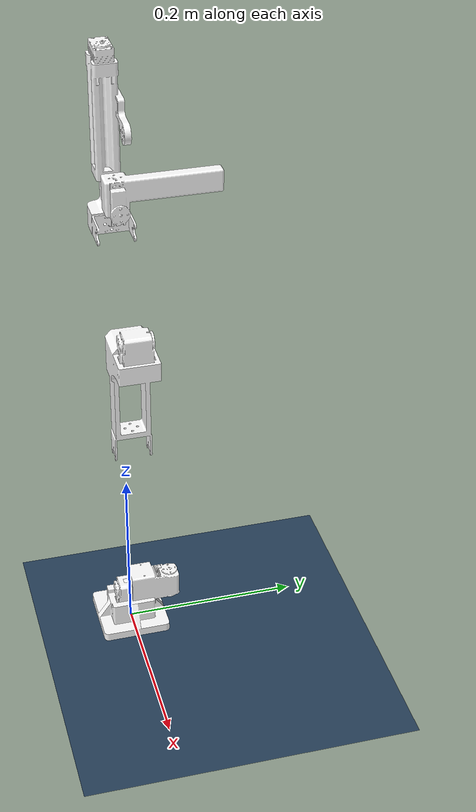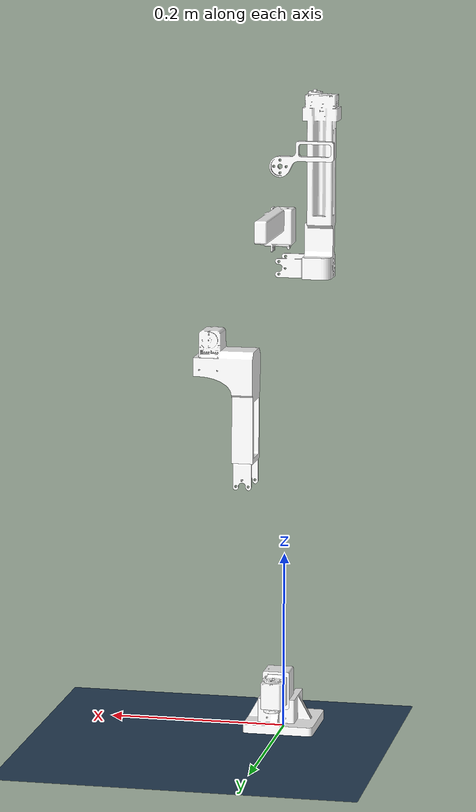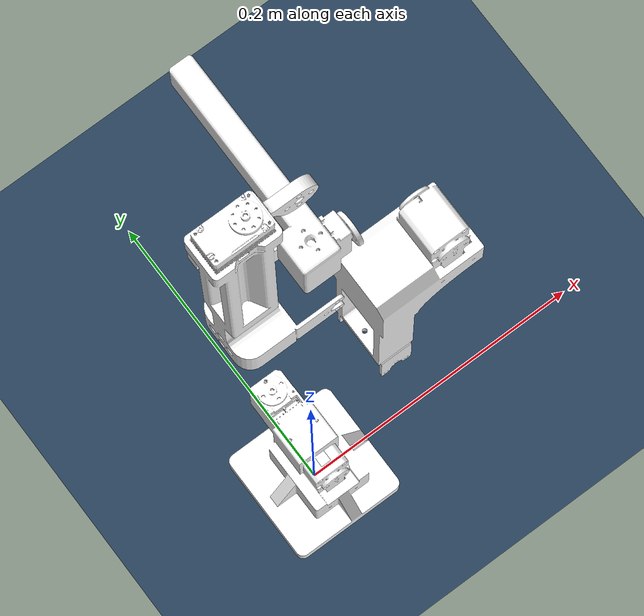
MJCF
<mujoco model="leader">
    <compiler angle="radian" meshdir="meshes/" />
    <size njmax="500" nconmax="100" />
    <asset>
        <texture name="grid" type="2d" builtin="checker" width="512" height="512" rgb1=".1 .2 .3" rgb2=".2 .3 .4"/>
        <material name="grid" texture="grid" texrepeat="1 1" texuniform="true" reflectance="0.2" specular="1.0" shininess="0.5"/>
        <mesh name="base_link" file="base_link.STL" />
        <mesh name="link_1" file="link_1.STL" />
        <mesh name="link_2" file="link_2.STL" />
        <mesh name="link_3" file="link_3.STL" />
        <mesh name="link_4" file="link_4.STL" />
        <mesh name="link_5" file="link_5.STL" />
    </asset>
    <worldbody>
        <geom name="floor" type="plane" pos="0 0 0" size="0 0 0.1" contype="1" conaffinity="1" material="grid"/>
        <light directional="true" diffuse=".8 .8 .8" specular=".5 .5 .5" pos="0 0 5" dir="0 0 -1" castshadow="true"/>
        <geom type="mesh" contype="1" conaffinity="1" group="1" rgba="1 1 1 1" mesh="base_link" />
        <body name="link_1" pos="0.004 -0.0005 0.04811" quat="-2.59734e-06 -2.59735e-06 0.707108 0.707105">
            <inertial pos="-0.023682 0.16131 -0.00087342" quat="0.416929 0.520143 -0.474639 0.574751" mass="0.1468" diaginertia="0.00104483 0.00103987 4.76741e-05" />
            <joint name="joint_1" pos="0 0 0" axis="0 0 1" limited="true" range="-2.6485 2.6485" damping="0.62275" frictionloss="0.098067" />
            <geom type="mesh" contype="1" conaffinity="1" group="1" rgba="1 1 1 1" mesh="link_1" />
            <body name="link_2" pos="-0.04098 0.2314 -0.0005">
                <inertial pos="0.037783 0.16226 -0.00087726" quat="0.709118 0.704478 -0.0107146 -0.0273526" mass="0.1467" diaginertia="0.0014554 0.00144957 3.72723e-05" />
                <joint name="joint_2" pos="0 0 0" axis="0 0 1" limited="true" range="0 3.4907" damping="0.72763" frictionloss="0.068647" />
                <geom type="mesh" contype="1" conaffinity="1" group="1" rgba="1 1 1 1" mesh="link_2" />
                <body name="link_3" pos="0.04098 0.24861 -0.0005">
                    <inertial pos="-0.0040244 0.039487 -4.87e-06" quat="0.70391 0.70391 0.0671633 0.0671633" mass="0.0618" diaginertia="2.68849e-05 2.514e-05 1.30451e-05" />
                    <joint name="joint_3" pos="0 0 0" axis="0 0 1" limited="true" range="-2.6485 2.6485" damping="0.72763" frictionloss="0.068647" />
                    <geom type="mesh" contype="1" conaffinity="1" group="1" rgba="1 1 1 1" mesh="link_3" />
                    <body name="link_4" pos="0 0.0639 0" quat="0.499998 0.5 -0.5 0.500002">
                        <inertial pos="0.0030101 0.015906 -0.020967" quat="0.650896 0.757963 -0.0313564 0.0290409" mass="0.0518" diaginertia="5.62184e-05 5.37575e-05 8.34408e-06" />
                        <joint name="joint_4" pos="0 0 0" axis="0 0 1" limited="true" range="-3.1416 3.1416" damping="0.13298" frictionloss="0.027851" />
                        <geom type="mesh" contype="1" conaffinity="1" group="1" rgba="1 1 1 1" mesh="link_4" />
                        <body name="link_5" pos="0.01315 0.0005 -0.047756" quat="0.499998 -0.5 0.500002 -0.5">
                            <inertial pos="-0.02125 -0.0081009 0.0036198" quat="0.113991 0.694126 -0.124757 0.699736" mass="0.0036" diaginertia="2.0201e-06 1.81644e-06 2.23458e-07" />
                            <joint name="joint_5" pos="0 0 0" axis="0 0 1" limited="true" range="-1.7628 0" damping="0.13298" frictionloss="0.027851" />
                            <geom type="mesh" contype="1" conaffinity="1" group="1" rgba="1 1 1 1" mesh="link_5" />
                        </body>
                    </body>
                </body>
            </body>
        </body>
    </worldbody>
    <actuator>
        <motor name="joint_1" joint="joint_1" />
        <motor name="joint_2" joint="joint_2" />
        <motor name="joint_3" joint="joint_3" />
        <motor name="joint_4" joint="joint_4" />
        <motor name="joint_5" joint="joint_5" />
    </actuator>
</mujoco>
